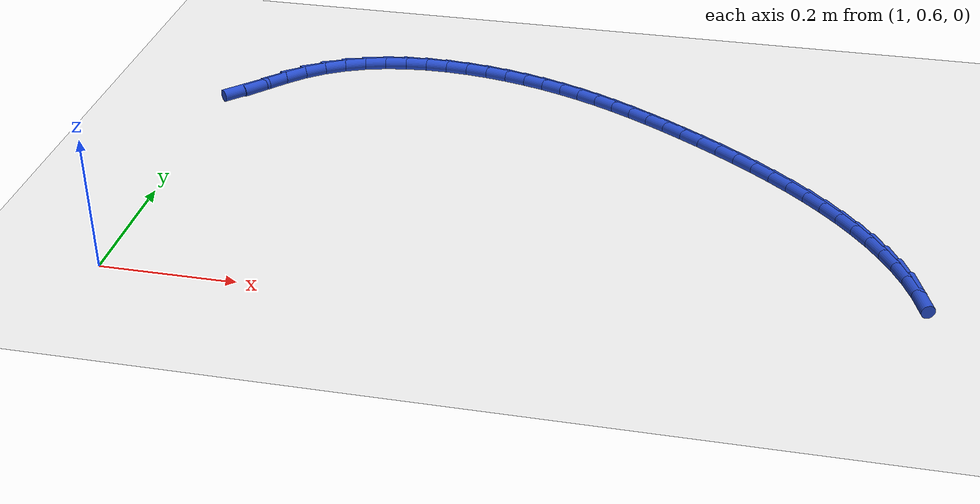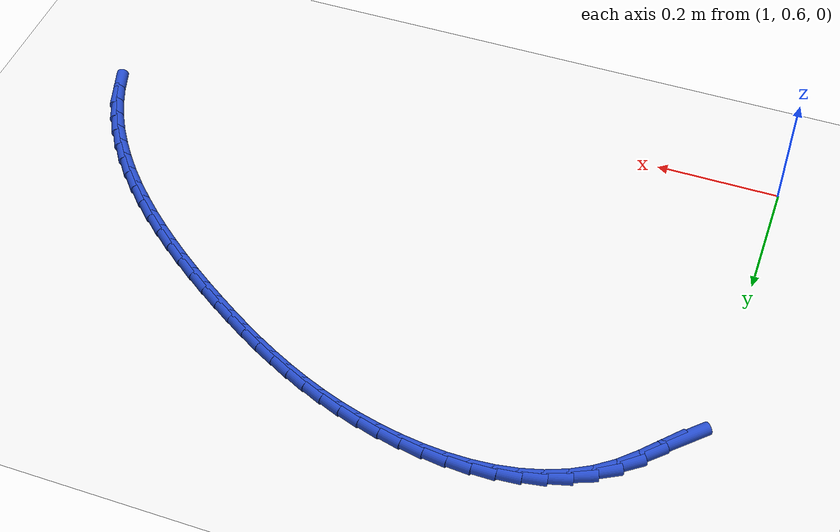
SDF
<sdf version="1.6">
 <world name="default">
  <model name="ground_plane">
   <static>1</static>
   <link name="link">
    <collision name="collision">
     <geometry><plane><normal>0 0 1</normal><size>100 100</size></plane></geometry>
     <surface><friction><ode><mu>100</mu><mu2>50</mu2></ode></friction></surface>
    </collision>
    <visual name="visual">
     <cast_shadows>0</cast_shadows>
     <geometry><plane><normal>0 0 1</normal><size>100 100</size></plane></geometry>
     <material>
      <script><uri>file://media/materials/scripts/gazebo.material</uri><name>Gazebo/WhiteGlow</name></script>
     </material>
    </visual>
   </link>
  </model>
  <model name="line">
   <link name="link_57">
    <pose>1.0321006123909109 1.1151053687214427 0.01 0 1.57 0.7737076027221083</pose>
    <collision name="collision">
     <geometry><cylinder><radius>0.01</radius><length>0.08</length></cylinder></geometry>
    </collision>
    <visual name="visual">
     <material>
      <script><name>Gazebo/Blue</name><uri>file://media/materials/scripts/gazebo.material</uri></script>
     </material>
     <geometry><cylinder><radius>0.01</radius><length>0.08</length></cylinder></geometry>
    </visual>
   </link>
   <link name="link_58">
    <pose>1.056834849722386 1.1392679487992778 0.01 0 1.57 0.8274370004401611</pose>
    <collision name="collision">
     <geometry><cylinder><radius>0.01</radius><length>0.08</length></cylinder></geometry>
    </collision>
    <visual name="visual">
     <material>
      <script><name>Gazebo/Blue</name><uri>file://media/materials/scripts/gazebo.material</uri></script>
     </material>
     <geometry><cylinder><radius>0.01</radius><length>0.08</length></cylinder></geometry>
    </visual>
   </link>
   <link name="link_59">
    <pose>1.0817580379433256 1.1663799243298014 0.01 0 1.57 0.7698169462939558</pose>
    <collision name="collision">
     <geometry><cylinder><radius>0.01</radius><length>0.08</length></cylinder></geometry>
    </collision>
    <visual name="visual">
     <material>
      <script><name>Gazebo/Blue</name><uri>file://media/materials/scripts/gazebo.material</uri></script>
     </material>
     <geometry><cylinder><radius>0.01</radius><length>0.08</length></cylinder></geometry>
    </visual>
   </link>
   <link name="link_60">
    <pose>1.1081729447773925 1.1919842427242777 0.01 0 1.57 0.6393398696385563</pose>
    <collision name="collision">
     <geometry><cylinder><radius>0.01</radius><length>0.08</length></cylinder></geometry>
    </collision>
    <visual name="visual">
     <material>
      <script><name>Gazebo/Blue</name><uri>file://media/materials/scripts/gazebo.material</uri></script>
     </material>
     <geometry><cylinder><radius>0.01</radius><length>0.08</length></cylinder></geometry>
    </visual>
   </link>
   <link name="link_61">
    <pose>1.1368145399897764 1.213279791630613 0.01 0 1.57 0.5068778882419857</pose>
    <collision name="collision">
     <geometry><cylinder><radius>0.01</radius><length>0.08</length></cylinder></geometry>
    </collision>
    <visual name="visual">
     <material>
      <script><name>Gazebo/Blue</name><uri>file://media/materials/scripts/gazebo.material</uri></script>
     </material>
     <geometry><cylinder><radius>0.01</radius><length>0.08</length></cylinder></geometry>
    </visual>
   </link>
   <link name="link_62">
    <pose>1.167449224442255 1.2302902173897805 0.01 0 1.57 0.3833053538715845</pose>
    <collision name="collision">
     <geometry><cylinder><radius>0.01</radius><length>0.08</length></cylinder></geometry>
    </collision>
    <visual name="visual">
     <material>
      <script><name>Gazebo/Blue</name><uri>file://media/materials/scripts/gazebo.material</uri></script>
     </material>
     <geometry><cylinder><radius>0.01</radius><length>0.08</length></cylinder></geometry>
    </visual>
   </link>
   <link name="link_63">
    <pose>1.199748806361979 1.243315038679799 0.01 0 1.57 0.2708177397100702</pose>
    <collision name="collision">
     <geometry><cylinder><radius>0.01</radius><length>0.08</length></cylinder></geometry>
    </collision>
    <visual name="visual">
     <material>
      <script><name>Gazebo/Blue</name><uri>file://media/materials/scripts/gazebo.material</uri></script>
     </material>
     <geometry><cylinder><radius>0.01</radius><length>0.08</length></cylinder></geometry>
    </visual>
   </link>
   <link name="link_64">
    <pose>1.233385093976096 1.2526537741786852 0.01 0 1.57 0.17014444492196507</pose>
    <collision name="collision">
     <geometry><cylinder><radius>0.01</radius><length>0.08</length></cylinder></geometry>
    </collision>
    <visual name="visual">
     <material>
      <script><name>Gazebo/Blue</name><uri>file://media/materials/scripts/gazebo.material</uri></script>
     </material>
     <geometry><cylinder><radius>0.01</radius><length>0.08</length></cylinder></geometry>
    </visual>
   </link>
   <link name="link_65">
    <pose>1.268029895511756 1.258605942564457 0.01 0 1.57 0.08092999340592118</pose>
    <collision name="collision">
     <geometry><cylinder><radius>0.01</radius><length>0.08</length></cylinder></geometry>
    </collision>
    <visual name="visual">
     <material>
      <script><name>Gazebo/Blue</name><uri>file://media/materials/scripts/gazebo.material</uri></script>
     </material>
     <geometry><cylinder><radius>0.01</radius><length>0.08</length></cylinder></geometry>
    </visual>
   </link>
   <link name="link_66">
    <pose>1.3033550191961085 1.261471062515132 0.01 0 1.57 0.0021747769920728646</pose>
    <collision name="collision">
     <geometry><cylinder><radius>0.01</radius><length>0.08</length></cylinder></geometry>
    </collision>
    <visual name="visual">
     <material>
      <script><name>Gazebo/Blue</name><uri>file://media/materials/scripts/gazebo.material</uri></script>
     </material>
     <geometry><cylinder><radius>0.01</radius><length>0.08</length></cylinder></geometry>
    </visual>
   </link>
   <link name="link_67">
    <pose>1.339032273256302 1.2615486527087274 0.01 0 1.57 -0.0674142254182999</pose>
    <collision name="collision">
     <geometry><cylinder><radius>0.01</radius><length>0.08</length></cylinder></geometry>
    </collision>
    <visual name="visual">
     <material>
      <script><name>Gazebo/Blue</name><uri>file://media/materials/scripts/gazebo.material</uri></script>
     </material>
     <geometry><cylinder><radius>0.01</radius><length>0.08</length></cylinder></geometry>
    </visual>
   </link>
   <link name="link_68">
    <pose>1.3747334659194868 1.2591382318232622 0.01 0 1.57 -0.12920030304270402</pose>
    <collision name="collision">
     <geometry><cylinder><radius>0.01</radius><length>0.08</length></cylinder></geometry>
    </collision>
    <visual name="visual">
     <material>
      <script><name>Gazebo/Blue</name><uri>file://media/materials/scripts/gazebo.material</uri></script>
     </material>
     <geometry><cylinder><radius>0.01</radius><length>0.08</length></cylinder></geometry>
    </visual>
   </link>
   <link name="link_69">
    <pose>1.4101304054128103 1.2545393185367528 0.01 0 1.57 -0.18450151065339546</pose>
    <collision name="collision">
     <geometry><cylinder><radius>0.01</radius><length>0.08</length></cylinder></geometry>
    </collision>
    <visual name="visual">
     <material>
      <script><name>Gazebo/Blue</name><uri>file://media/materials/scripts/gazebo.material</uri></script>
     </material>
     <geometry><cylinder><radius>0.01</radius><length>0.08</length></cylinder></geometry>
    </visual>
   </link>
   <link name="link_70">
    <pose>1.444894899963423 1.2480514315272166 0.01 0 1.57 -0.23497913928047784</pose>
    <collision name="collision">
     <geometry><cylinder><radius>0.01</radius><length>0.08</length></cylinder></geometry>
    </collision>
    <visual name="visual">
     <material>
      <script><name>Gazebo/Blue</name><uri>file://media/materials/scripts/gazebo.material</uri></script>
     </material>
     <geometry><cylinder><radius>0.01</radius><length>0.08</length></cylinder></geometry>
    </visual>
   </link>
   <link name="link_71">
    <pose>1.4787586778905195 1.239944387308134 0.01 0 1.57 -0.283199944865311</pose>
    <collision name="collision">
     <geometry><cylinder><radius>0.01</radius><length>0.08</length></cylinder></geometry>
    </collision>
    <visual name="visual">
     <material>
      <script><name>Gazebo/Blue</name><uri>file://media/materials/scripts/gazebo.material</uri></script>
     </material>
     <geometry><cylinder><radius>0.01</radius><length>0.08</length></cylinder></geometry>
    </visual>
   </link>
   <link name="link_72">
    <pose>1.51173938730483 1.2303462730263726 0.01 0 1.57 -0.32927327771094456</pose>
    <collision name="collision">
     <geometry><cylinder><radius>0.01</radius><length>0.08</length></cylinder></geometry>
    </collision>
    <visual name="visual">
     <material>
      <script><name>Gazebo/Blue</name><uri>file://media/materials/scripts/gazebo.material</uri></script>
     </material>
     <geometry><cylinder><radius>0.01</radius><length>0.08</length></cylinder></geometry>
    </visual>
   </link>
   <link name="link_73">
    <pose>1.5439398629687588 1.2193429491255665 0.01 0 1.57 -0.37264538132734254</pose>
    <collision name="collision">
     <geometry><cylinder><radius>0.01</radius><length>0.08</length></cylinder></geometry>
    </collision>
    <visual name="visual">
     <material>
      <script><name>Gazebo/Blue</name><uri>file://media/materials/scripts/gazebo.material</uri></script>
     </material>
     <geometry><cylinder><radius>0.01</radius><length>0.08</length></cylinder></geometry>
    </visual>
   </link>
   <link name="link_74">
    <pose>1.5754629541640355 1.2070202688521774 0.01 0 1.57 -0.41284944415316244</pose>
    <collision name="collision">
     <geometry><cylinder><radius>0.01</radius><length>0.08</length></cylinder></geometry>
    </collision>
    <visual name="visual">
     <material>
      <script><name>Gazebo/Blue</name><uri>file://media/materials/scripts/gazebo.material</uri></script>
     </material>
     <geometry><cylinder><radius>0.01</radius><length>0.08</length></cylinder></geometry>
    </visual>
   </link>
   <link name="link_75">
    <pose>1.6064115101723868 1.1934640854526664 0.01 0 1.57 -0.44951640805743437</pose>
    <collision name="collision">
     <geometry><cylinder><radius>0.01</radius><length>0.08</length></cylinder></geometry>
    </collision>
    <visual name="visual">
     <material>
      <script><name>Gazebo/Blue</name><uri>file://media/materials/scripts/gazebo.material</uri></script>
     </material>
     <geometry><cylinder><radius>0.01</radius><length>0.08</length></cylinder></geometry>
    </visual>
   </link>
   <link name="link_76">
    <pose>1.6368883802755414 1.1787602521734941 0.01 0 1.57 -0.4823765922836929</pose>
    <collision name="collision">
     <geometry><cylinder><radius>0.01</radius><length>0.08</length></cylinder></geometry>
    </collision>
    <visual name="visual">
     <material>
      <script><name>Gazebo/Blue</name><uri>file://media/materials/scripts/gazebo.material</uri></script>
     </material>
     <geometry><cylinder><radius>0.01</radius><length>0.08</length></cylinder></geometry>
    </visual>
   </link>
   <link name="link_77">
    <pose>1.6669964137552264 1.1629946222611214 0.01 0 1.57 -0.5112539900066092</pose>
    <collision name="collision">
     <geometry><cylinder><radius>0.01</radius><length>0.08</length></cylinder></geometry>
    </collision>
    <visual name="visual">
     <material>
      <script><name>Gazebo/Blue</name><uri>file://media/materials/scripts/gazebo.material</uri></script>
     </material>
     <geometry><cylinder><radius>0.01</radius><length>0.08</length></cylinder></geometry>
    </visual>
   </link>
   <link name="link_78">
    <pose>1.6968384598931705 1.1462530489620104 0.01 0 1.57 -0.5360556296916983</pose>
    <collision name="collision">
     <geometry><cylinder><radius>0.01</radius><length>0.08</length></cylinder></geometry>
    </collision>
    <visual name="visual">
     <material>
      <script><name>Gazebo/Blue</name><uri>file://media/materials/scripts/gazebo.material</uri></script>
     </material>
     <geometry><cylinder><radius>0.01</radius><length>0.08</length></cylinder></geometry>
    </visual>
   </link>
   <link name="link_79">
    <pose>1.7265173679711012 1.1286213855226206 0.01 0 1.57 -0.5567587043783512</pose>
    <collision name="collision">
     <geometry><cylinder><radius>0.01</radius><length>0.08</length></cylinder></geometry>
    </collision>
    <visual name="visual">
     <material>
      <script><name>Gazebo/Blue</name><uri>file://media/materials/scripts/gazebo.material</uri></script>
     </material>
     <geometry><cylinder><radius>0.01</radius><length>0.08</length></cylinder></geometry>
    </visual>
   </link>
   <link name="link_80">
    <pose>1.756135975248451 1.11018548072345 0.01 0 1.57 -0.5746950364085331</pose>
    <collision name="collision">
     <geometry><cylinder><radius>0.01</radius><length>0.08</length></cylinder></geometry>
    </collision>
    <visual name="visual">
     <material>
      <script><name>Gazebo/Blue</name><uri>file://media/materials/scripts/gazebo.material</uri></script>
     </material>
     <geometry><cylinder><radius>0.01</radius><length>0.08</length></cylinder></geometry>
    </visual>
   </link>
   <link name="link_81">
    <pose>1.7857435108063238 1.0910112693246405 0.01 0 1.57 -0.5942325645808917</pose>
    <collision name="collision">
     <geometry><cylinder><radius>0.01</radius><length>0.08</length></cylinder></geometry>
    </collision>
    <visual name="visual">
     <material>
      <script><name>Gazebo/Blue</name><uri>file://media/materials/scripts/gazebo.material</uri></script>
     </material>
     <geometry><cylinder><radius>0.01</radius><length>0.08</length></cylinder></geometry>
    </visual>
   </link>
   <link name="link_82">
    <pose>1.8152124381652335 1.0710990223558954 0.01 0 1.57 -0.6163880806540997</pose>
    <collision name="collision">
     <geometry><cylinder><radius>0.01</radius><length>0.08</length></cylinder></geometry>
    </collision>
    <visual name="visual">
     <material>
      <script><name>Gazebo/Blue</name><uri>file://media/materials/scripts/gazebo.material</uri></script>
     </material>
     <geometry><cylinder><radius>0.01</radius><length>0.08</length></cylinder></geometry>
    </visual>
   </link>
   <link name="link_83">
    <pose>1.8443788391145095 1.05043549599605 0.01 0 1.57 -0.6413363696253932</pose>
    <collision name="collision">
     <geometry><cylinder><radius>0.01</radius><length>0.08</length></cylinder></geometry>
    </collision>
    <visual name="visual">
     <material>
      <script><name>Gazebo/Blue</name><uri>file://media/materials/scripts/gazebo.material</uri></script>
     </material>
     <geometry><cylinder><radius>0.01</radius><length>0.08</length></cylinder></geometry>
    </visual>
   </link>
   <link name="link_84">
    <pose>1.8730787954434815 1.0290074464239418 0.01 0 1.57 -0.6692896533855108</pose>
    <collision name="collision">
     <geometry><cylinder><radius>0.01</radius><length>0.08</length></cylinder></geometry>
    </collision>
    <visual name="visual">
     <material>
      <script><name>Gazebo/Blue</name><uri>file://media/materials/scripts/gazebo.material</uri></script>
     </material>
     <geometry><cylinder><radius>0.01</radius><length>0.08</length></cylinder></geometry>
    </visual>
   </link>
   <link name="link_85">
    <pose>1.9011483889414806 1.006801629818407 0.01 0 1.57 -0.7004962711383407</pose>
    <collision name="collision">
     <geometry><cylinder><radius>0.01</radius><length>0.08</length></cylinder></geometry>
    </collision>
    <visual name="visual">
     <material>
      <script><name>Gazebo/Blue</name><uri>file://media/materials/scripts/gazebo.material</uri></script>
     </material>
     <geometry><cylinder><radius>0.01</radius><length>0.08</length></cylinder></geometry>
    </visual>
   </link>
   <link name="link_86">
    <pose>1.9284237013978351 0.9838048023582827 0.01 0 1.57 -0.7352383246841572</pose>
    <collision name="collision">
     <geometry><cylinder><radius>0.01</radius><length>0.08</length></cylinder></geometry>
    </collision>
    <visual name="visual">
     <material>
      <script><name>Gazebo/Blue</name><uri>file://media/materials/scripts/gazebo.material</uri></script>
     </material>
     <geometry><cylinder><radius>0.01</radius><length>0.08</length></cylinder></geometry>
    </visual>
   </link>
   <link name="link_87">
    <pose>1.9547408146018768 0.9600037202224054 0.01 0 1.57 -0.773827233838167</pose>
    <collision name="collision">
     <geometry><cylinder><radius>0.01</radius><length>0.08</length></cylinder></geometry>
    </collision>
    <visual name="visual">
     <material>
      <script><name>Gazebo/Blue</name><uri>file://media/materials/scripts/gazebo.material</uri></script>
     </material>
     <geometry><cylinder><radius>0.01</radius><length>0.08</length></cylinder></geometry>
    </visual>
   </link>
   <link name="link_88">
    <pose>1.9799358103429345 0.9353851395896117 0.01 0 1.57 -0.8165958269867</pose>
    <collision name="collision">
     <geometry><cylinder><radius>0.01</radius><length>0.08</length></cylinder></geometry>
    </collision>
    <visual name="visual">
     <material>
      <script><name>Gazebo/Blue</name><uri>file://media/materials/scripts/gazebo.material</uri></script>
     </material>
     <geometry><cylinder><radius>0.01</radius><length>0.08</length></cylinder></geometry>
    </visual>
   </link>
   <link name="link_89">
    <pose>2.0038447704103377 0.9099358166387381 0.01 0 1.57 -0.8638852314940962</pose>
    <collision name="collision">
     <geometry><cylinder><radius>0.01</radius><length>0.08</length></cylinder></geometry>
    </collision>
    <visual name="visual">
     <material>
      <script><name>Gazebo/Blue</name><uri>file://media/materials/scripts/gazebo.material</uri></script>
     </material>
     <geometry><cylinder><radius>0.01</radius><length>0.08</length></cylinder></geometry>
    </visual>
   </link>
   <link name="link_90">
    <pose>2.026303776593418 0.8836425075486213 0.01 0 1.57 -0.9160245329365198</pose>
    <collision name="collision">
     <geometry><cylinder><radius>0.01</radius><length>0.08</length></cylinder></geometry>
    </collision>
    <visual name="visual">
     <material>
      <script><name>Gazebo/Blue</name><uri>file://media/materials/scripts/gazebo.material</uri></script>
     </material>
     <geometry><cylinder><radius>0.01</radius><length>0.08</length></cylinder></geometry>
    </visual>
   </link>
   <link name="link_91">
    <pose>2.0471489106815044 0.8564919684980985 0.01 0 1.57 -0.973301150202271</pose>
    <collision name="collision">
     <geometry><cylinder><radius>0.01</radius><length>0.08</length></cylinder></geometry>
    </collision>
    <visual name="visual">
     <material>
      <script><name>Gazebo/Blue</name><uri>file://media/materials/scripts/gazebo.material</uri></script>
     </material>
     <geometry><cylinder><radius>0.01</radius><length>0.08</length></cylinder></geometry>
    </visual>
   </link>
   <link name="link_92">
    <pose>2.066216254463926 0.8284709556660057 0.01 0 1.57 -1.0359204750983566</pose>
    <collision name="collision">
     <geometry><cylinder><radius>0.01</radius><length>0.08</length></cylinder></geometry>
    </collision>
    <visual name="visual">
     <material>
      <script><name>Gazebo/Blue</name><uri>file://media/materials/scripts/gazebo.material</uri></script>
     </material>
     <geometry><cylinder><radius>0.01</radius><length>0.08</length></cylinder></geometry>
    </visual>
   </link>
   <link name="link_93">
    <pose>2.083341889730015 0.7995662252311804 0.01 0 1.57 -1.1039550220646577</pose>
    <collision name="collision">
     <geometry><cylinder><radius>0.01</radius><length>0.08</length></cylinder></geometry>
    </collision>
    <visual name="visual">
     <material>
      <script><name>Gazebo/Blue</name><uri>file://media/materials/scripts/gazebo.material</uri></script>
     </material>
     <geometry><cylinder><radius>0.01</radius><length>0.08</length></cylinder></geometry>
    </visual>
   </link>
   <link name="link_94">
    <pose>2.0983618982690997 0.7697645333724581 0.01 0 1.57 -1.1772865587003007</pose>
    <collision name="collision">
     <geometry><cylinder><radius>0.01</radius><length>0.08</length></cylinder></geometry>
    </collision>
    <visual name="visual">
     <material>
      <script><name>Gazebo/Blue</name><uri>file://media/materials/scripts/gazebo.material</uri></script>
     </material>
     <geometry><cylinder><radius>0.01</radius><length>0.08</length></cylinder></geometry>
    </visual>
   </link>
   <link name="link_95">
    <pose>2.11111236187051 0.7390526362686766 0.01 0 1.57 -1.2555163704809207</pose>
    <collision name="collision">
     <geometry><cylinder><radius>0.01</radius><length>0.08</length></cylinder></geometry>
    </collision>
    <visual name="visual">
     <material>
      <script><name>Gazebo/Blue</name><uri>file://media/materials/scripts/gazebo.material</uri></script>
     </material>
     <geometry><cylinder><radius>0.01</radius><length>0.08</length></cylinder></geometry>
    </visual>
   </link>
  </model>
 </world>
</sdf>
